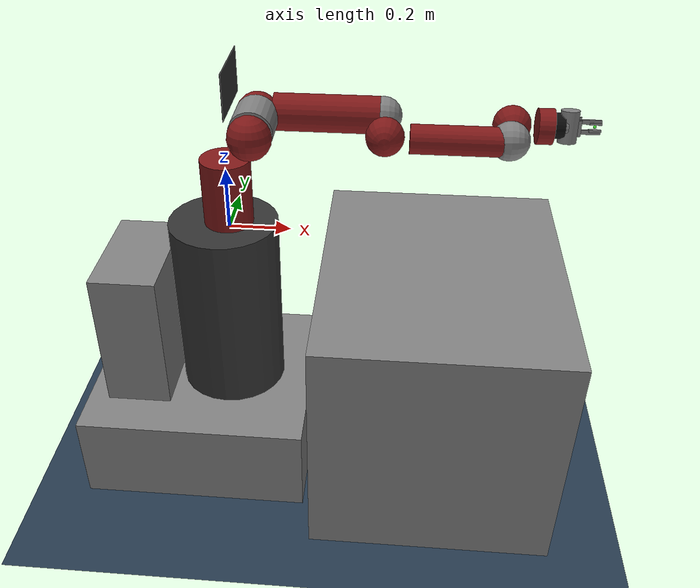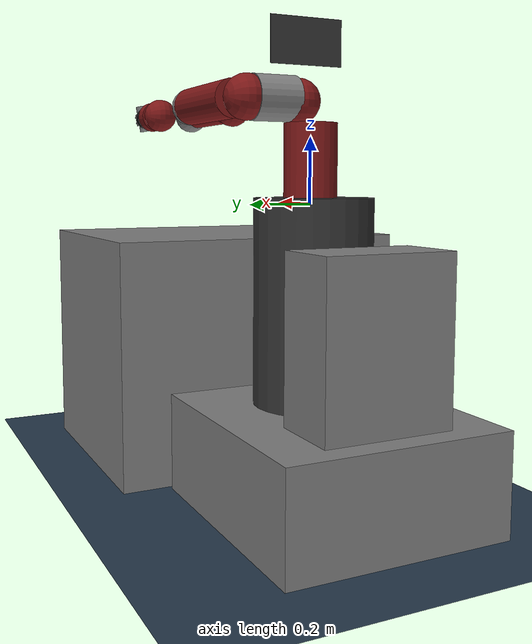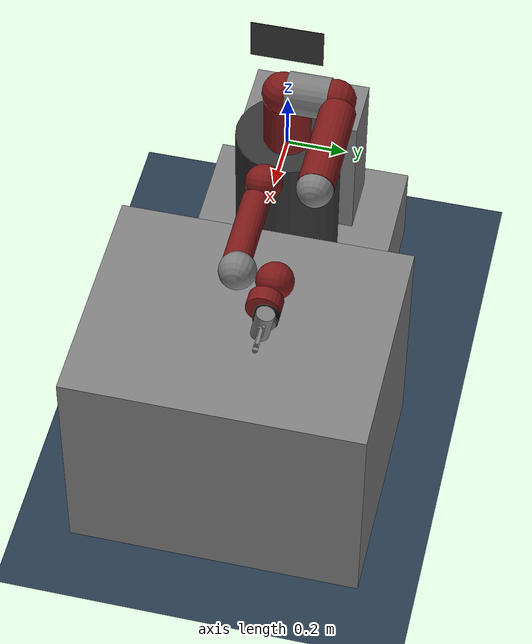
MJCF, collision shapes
<mujoco>

    <include file="shared.xml"/>

    <worldbody>

        <!-- Lights -->
        <light directional="true" ambient="0.2 0.2 0.2" diffuse="0.8 0.8 0.8" specular="0.3 0.3 0.3" castshadow="false" pos="0 0 4" dir="0 0 -1" name="light0"/>

        <!-- Floor -->
        <geom name="floor" pos="0 0 -0.92" size="20 20 0.00001" type="plane" material="mat_plane"/>

        <!-- Robot -->
        <include file="sawyer_gripper_mujoco.xml"/>

        <!-- Table -->
        <body name="table" pos="0.7 0 -0.52">
            <geom name="table" pos="0 0 0" size="0.4 0.5 0.4" type="box" mass="2000"  solimp="0.99 0.99 0.01" solref="0.01 1" group="1"/>
        </body>

        <!-- Object -->
        <body name="object">
            <joint name="object_j" type="free"/>
			<geom name="object" size="0.02 0.02 0.02" type="box" rgba="0.9 0.0 0.0 0.8" mass="0.02" solimp="0.99 0.99 0.01" solref="0.01 1" group="1"/>
			<site name="object" size="0.01" pos="0 0 0" rgba=".1 .9 0 1" type="sphere"/>
		</body>

    </worldbody>

    <actuator>
        <velocity ctrllimited="true" ctrlrange="-1.74 1.74"   joint="right_j0" kv="8.0" name="right_j0_vel"/>
        <velocity ctrllimited="true" ctrlrange="-1.328 1.328" joint="right_j1" kv="7.0" name="right_j1_vel"/>
        <velocity ctrllimited="true" ctrlrange="-1.957 1.957" joint="right_j2" kv="6.0" name="right_j2_vel"/>
        <velocity ctrllimited="true" ctrlrange="-1.957 1.957" joint="right_j3" kv="4.0" name="right_j3_vel"/>
        <velocity ctrllimited="true" ctrlrange="-3.485 3.485" joint="right_j4" kv="2.0" name="right_j4_vel"/>
        <velocity ctrllimited="true" ctrlrange="-3.485 3.485" joint="right_j5" kv="0.5" name="right_j5_vel"/>
        <velocity ctrllimited="true" ctrlrange="-4.545 4.545" joint="right_j6" kv="0.1" name="right_j6_vel"/>

        <position ctrllimited="true" ctrlrange="0 0.020833"   joint="right_gripper_l_finger_joint" kp="10000" forcelimited="false" forcerange="-20 20"/>
        <position ctrllimited="true" ctrlrange="-0.020833 0"  joint="right_gripper_r_finger_joint" kp="10000" forcelimited="false" forcerange="-20 20"/>

    </actuator>

</mujoco>

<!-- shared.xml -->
<mujoco>

    <compiler angle="radian" meshdir="meshes/"/>
    <size njmax="500" nconmax="100"/>

    <option gravity="0 0 -9.81" timestep="0.002" cone="elliptic" impratio="20" />

    <asset>
        <mesh name="pedestal" file="pedestal.STL" />
        <mesh name="base" file="base.STL" />
        <mesh name="l0" file="l0.STL" />
        <mesh name="head" file="head.STL" />
        <mesh name="l1" file="l1.STL" />
        <mesh name="l2" file="l2.STL" />
        <mesh name="l3" file="l3.STL" />
        <mesh name="l4" file="l4.STL" />
        <mesh name="l5" file="l5.STL" />
        <mesh name="l6" file="l6.STL" />
        <mesh name="connector_plate" file="connector_plate.STL" />
        <mesh name="electric_gripper_base" file="electric_gripper_base.STL" />
        <mesh name="standard_narrow" file="standard_narrow.STL" />
        <mesh name="basic_soft_tip" file="basic_soft_tip.STL" />

        <texture name="tex_plane" type="2d" builtin="checker" rgb1=".2 .3 .4" rgb2=".1 0.15 0.2" width="512" height="512"/>
        <material name="mat_plane" reflectance="0.3" texture="tex_plane" texrepeat="1 1" texuniform="true"/>

    </asset>

    <contact>
        <exclude body1="right_gripper_l_finger" body2="right_gripper_r_finger"/>
    </contact>

</mujoco>

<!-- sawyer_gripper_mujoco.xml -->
<mujoco model="sawyer">
        <body name="base" pos="0 0 0">
            <inertial pos="0 0 0" mass="0" diaginertia="0 0 0" />
            <body name="controller_box" pos="0 0 0">
                <inertial pos="-0.325 0 -0.38" mass="46.64" diaginertia="1.71363 1.27988 0.809981" />
                <geom size="0.11 0.2 0.265" pos="-0.325 0 -0.38" type="box" />
            </body>
            <body name="pedestal_feet" pos="0 0 0">
                <inertial pos="-0.1225 0 -0.758" mass="167.09" diaginertia="8.16095 9.59375 15.0785" />
                <geom size="0.385 0.35 0.155" pos="-0.1225 0 -0.758" type="box" />
            </body>
            <body name="pedestal" pos="0 0 0">
                <inertial pos="0 0 -0.5" quat="0.659267 -0.259505 -0.260945 0.655692" mass="60.864" diaginertia="6.0869 5.81635 4.20915" />
                <geom pos="0.26 0.345 -0.91488" quat="0.5 0.5 -0.5 -0.5" type="mesh" contype="0" conaffinity="0" group="1" rgba="0.2 0.2 0.2 1" mesh="pedestal" />
                <geom size="0.18 0.31" pos="-0.02 0 -0.29" type="cylinder" rgba="0.2 0.2 0.2 1" />
            </body>
            <body name="right_arm_base_link" pos="0 0 0">
                <inertial pos="-0.0006241 -2.8025e-05 0.065404" quat="-0.209285 0.674441 0.227335 0.670558" mass="2.0687" diaginertia="0.00740351 0.00681776 0.00672942" />
                <geom type="mesh" contype="0" conaffinity="0" group="1" rgba="0.5 0.1 0.1 1" mesh="base" />
                <geom size="0.08 0.12" pos="0 0 0.12" type="cylinder" rgba="0.5 0.1 0.1 1" />
                <body name="right_l0" pos="0 0 0.08">
                    <inertial pos="0.024366 0.010969 0.14363" quat="0.894823 0.00899958 -0.170275 0.412573" mass="5.3213" diaginertia="0.0651588 0.0510944 0.0186218" />
                    <joint name="right_j0" pos="0 0 0" axis="0 0 1" limited="true" range="-3.0503 3.0503" />
                    <geom type="mesh" contype="0" conaffinity="0" group="1" rgba="0.5 0.1 0.1 1" mesh="l0" />
                    <geom size="0.07" pos="0.08 0 0.23" rgba="0.5 0.1 0.1 1" />
                    <body name="head" pos="0 0 0.2965">
                        <inertial pos="0.0053207 -2.6549e-05 0.1021" quat="0.999993 7.08405e-05 -0.00359857 -0.000626247" mass="1.5795" diaginertia="0.0118334 0.00827089 0.00496574" />
                        <geom type="mesh" contype="0" conaffinity="0" group="1" rgba="0.5 0.1 0.1 1" mesh="head" />
                        <body name="screen" pos="0.03 0 0.105" quat="0.5 0.5 0.5 0.5">
                            <inertial pos="0 0 0" mass="0.0001" diaginertia="1e-08 1e-08 1e-08" />
                            <geom size="0.12 0.07 0.001" type="box" contype="0" conaffinity="0" group="1" rgba="0.2 0.2 0.2 1" />
                            <geom size="0.001" rgba="0.2 0.2 0.2 1" />
                        </body>
                        <body name="head_camera" pos="0.0228027 0 0.216572" quat="0.342813 -0.618449 0.618449 -0.342813">
                            <inertial pos="0.0228027 0 0.216572" quat="0.342813 -0.618449 0.618449 -0.342813" mass="0" diaginertia="0 0 0" />
                        </body>
                    </body>
                    <body name="right_torso_itb" pos="-0.055 0 0.22" quat="0.707107 0 -0.707107 0">
                        <inertial pos="0 0 0" mass="0.0001" diaginertia="1e-08 1e-08 1e-08" />
                    </body>
                    <body name="right_l1" pos="0.081 0.05 0.237" quat="0.5 -0.5 0.5 0.5">
                        <inertial pos="-0.0030849 -0.026811 0.092521" quat="0.424888 0.891987 0.132364 -0.0794296" mass="4.505" diaginertia="0.0224339 0.0221624 0.0097097" />
                        <joint name="right_j1" pos="0 0 0" axis="0 0 1" limited="true" range="-3.8095 2.2736" />
                        <geom type="mesh" contype="0" conaffinity="0" group="1" rgba="0.5 0.1 0.1 1" mesh="l1" />
                        <geom size="0.07" pos="0 0 0.1225" rgba="0.5 0.1 0.1 1" />
                        <body name="right_l2" pos="0 -0.14 0.1425" quat="0.707107 0.707107 0 0">
                            <inertial pos="-0.00016044 -0.014967 0.13582" quat="0.707831 -0.0524761 0.0516007 0.702537" mass="1.745" diaginertia="0.0257928 0.025506 0.00292515" />
                            <joint name="right_j2" pos="0 0 0" axis="0 0 1" limited="true" range="-3.0426 3.0426" />
                            <geom type="mesh" contype="0" conaffinity="0" group="1" rgba="0.5 0.1 0.1 1" mesh="l2" />
                            <geom size="0.06 0.17" pos="0 0 0.08" type="cylinder" rgba="0.5 0.1 0.1 1" />
                            <body name="right_l3" pos="0 -0.042 0.26" quat="0.707107 -0.707107 0 0">
                                <inertial pos="-0.0048135 -0.0281 -0.084154" quat="0.902999 0.385391 -0.0880901 0.168247" mass="2.5097" diaginertia="0.0102404 0.0096997 0.00369622" />
                                <joint name="right_j3" pos="0 0 0" axis="0 0 1" limited="true" range="-3.0439 3.0439" />
                                <geom type="mesh" contype="0" conaffinity="0" group="1" rgba="0.5 0.1 0.1 1" mesh="l3" />
                                <geom size="0.06" pos="0 -0.01 -0.12" rgba="0.5 0.1 0.1 1" />
                                <body name="right_l4" pos="0 -0.125 -0.1265" quat="0.707107 0.707107 0 0">
                                    <inertial pos="-0.0018844 0.0069001 0.1341" quat="0.803612 0.031257 -0.0298334 0.593582" mass="1.1136" diaginertia="0.0136549 0.0135493 0.00127353" />
                                    <joint name="right_j4" pos="0 0 0" axis="0 0 1" limited="true" range="-2.9761 2.9761" />
                                    <geom type="mesh" contype="0" conaffinity="0" group="1" rgba="0.5 0.1 0.1 1" mesh="l4" />
                                    <geom size="0.045 0.15" pos="0 0 0.11" type="cylinder" rgba="0.5 0.1 0.1 1" />
                                    <body name="right_arm_itb" pos="-0.055 0 0.075" quat="0.707107 0 -0.707107 0">
                                        <inertial pos="0 0 0" mass="0.0001" diaginertia="1e-08 1e-08 1e-08" />
                                    </body>
                                    <body name="right_l5" pos="0 0.031 0.275" quat="0.707107 -0.707107 0 0">
                                        <inertial pos="0.0061133 -0.023697 0.076416" quat="0.404076 0.9135 0.0473125 0.00158335" mass="1.5625" diaginertia="0.00474131 0.00422857 0.00190672" />
                                        <joint name="right_j5" pos="0 0 0" axis="0 0 1" limited="true" range="-2.9761 2.9761" />
                                        <geom type="mesh" contype="0" conaffinity="0" group="1" rgba="0.5 0.1 0.1 1" mesh="l5" />
                                        <geom size="0.06" pos="0 0 0.1" rgba="0.5 0.1 0.1 1" />
                                        <body name="right_hand_camera" pos="0.039552 -0.033 0.0695" quat="0.707107 0 0.707107 0">
                                            <inertial pos="0.039552 -0.033 0.0695" quat="0.707107 0 0.707107 0" mass="0" diaginertia="0 0 0" />
                                        </body>
                                        <body name="right_wrist" pos="0 0 0.10541" quat="0.707107 0.707107 0 0">
                                            <inertial pos="0 0 0.10541" quat="0.707107 0.707107 0 0" mass="0" diaginertia="0 0 0" />
                                        </body>
                                        <body name="right_l6" pos="0 -0.11 0.1053" quat="0.0616248 0.06163 -0.704416 0.704416">
                                            <inertial pos="-8.0726e-06 0.0085838 -0.0049566" quat="0.479044 0.515636 -0.513069 0.491322" mass="0.3292" diaginertia="0.000360258 0.000311068 0.000214974" />
                                            <joint name="right_j6" pos="0 0 0" axis="0 0 1" limited="true" range="-4.7124 4.7124" />
                                            <geom type="mesh" contype="0" conaffinity="0" group="1" rgba="0.5 0.1 0.1 1" mesh="l6" />
                                            <geom size="0.055 0.025" pos="0 0.015 -0.01" type="cylinder" rgba="0.5 0.1 0.1 1" />
                                            <body name="right_hand" pos="0 0 0.0245" quat="0.707107 0 0 0.707107">
                                                <inertial pos="1e-08 1e-08 1e-08" quat="0.820473 0.339851 -0.17592 0.424708" mass="1e-08" diaginertia="1e-08 1e-08 1e-08" />
                                                <geom size="0.035 0.015" pos="0 0 0.02" type="cylinder" />
                                                <body name="right_gripper_base" pos="0 0 -0.005">
                                                    <inertial pos="0.0028 -0.0004 0.0343" mass="0.47" diaginertia="1e-08 1e-08 1e-08" />
                                                    <body name="right_connector_plate_base" pos="0 0 0.0018">
                                                        <inertial pos="0 0 0" quat="0.483054 0.500901 -0.498692 0.516781" mass="0" diaginertia="0.000123974 6.98704e-05 6.81858e-05" />
                                                        <geom type="mesh" contype="0" conaffinity="0" group="1" rgba="0.05 0.05 0.05 1" mesh="connector_plate" />
                                                        <geom size="0.04 0.0151" pos="0 0 0.0135" type="cylinder" rgba="0.05 0.05 0.05 1" />
                                                        <body name="right_connector_plate_mount" pos="0 0 0.0176">
                                                            <inertial pos="0 0 0.0176" mass="0" diaginertia="0 0 0" />
                                                            <body name="right_electric_gripper_base" pos="0 0 0">

                                                                <camera name="camera_on_hand" mode="fixed" pos="0.05 0 0" zaxis="0 0 -1"/>

                                                                <inertial pos="0 0 0" quat="0 0 0.707107 0.707107" mass="2e-06" diaginertia="1.1e-09 1.1e-09 1.1e-09" />
                                                                <geom type="mesh" contype="0" conaffinity="0" group="1" mesh="electric_gripper_base" />
                                                                <geom size="0.029 0.05" pos="0.004 0 0.025" quat="0 0 0.707107 0.707107" type="cylinder" />
                                                                <body name="right_gripper_l_finger" pos="0.003 -0.0015 0.04552">
                                                                    <inertial pos="0 0 0" quat="0 0 0 -1" mass="0.001" diaginertia="0.01 0.01 0.01" />
                                                                    <joint name="right_gripper_l_finger_joint" pos="0 0 0" axis="0 1 0" type="slide" limited="true" range="0 0.020833" damping="100"/>
                                                                    <geom quat="0 0 0 -1" type="mesh" contype="0" conaffinity="0" group="1" mesh="standard_narrow" />
                                                                    <geom size="0.005 0.00675 0.0375" pos="0 0.01725 0.04" quat="0 0 0 -1" type="box" />
                                                                    <geom size="0.005 0.025 0.0085" pos="-0.005 -0.003 0.0083" quat="0 0 0 -1" type="box" />
                                                                    <body name="right_gripper_l_finger_tip" pos="0 0.01725 0.075">
                                                                        <inertial pos="0 0 0" quat="0 0 0 1" mass="0.001" diaginertia="0.01 0.01 0.01" />
                                                                        <geom quat="0 0 0 1" type="mesh" contype="0" conaffinity="0" group="1" mesh="basic_soft_tip" />
                                                                        <geom size="0.008 0.0035 0.0185" pos="0 -0.0045 -0.015" quat="0 0 0 1" type="box" name="l_finger_tip"  friction="1 0.05 0.01"/>
                                                                    </body>
                                                                </body>
                                                                <body name="right_gripper_r_finger" pos="0.003 0.0015 0.04552">
                                                                    <inertial pos="0 0 0" mass="0.001" diaginertia="0.01 0.01 0.01" />
                                                                    <joint name="right_gripper_r_finger_joint" pos="0 0 0" axis="0 1 0" type="slide" limited="true" range="-0.020833 0" damping="100"/>
                                                                    <geom type="mesh" contype="0" conaffinity="0" group="1" mesh="standard_narrow" />
                                                                    <geom size="0.005 0.00675 0.0375" pos="0 -0.01725 0.04" type="box" />
                                                                    <geom size="0.005 0.025 0.0085" pos="0.005 0.003 0.0083" type="box" />
                                                                    <body name="right_gripper_r_finger_tip" pos="0 -0.01725 0.075">
                                                                        <inertial pos="0 0 0" mass="0.001" diaginertia="0.01 0.01 0.01" />
                                                                        <geom type="mesh" contype="0" conaffinity="0" group="1" mesh="basic_soft_tip" />
                                                                        <geom size="0.008 0.0035 0.0185" pos="0 0.0045 -0.015" type="box" name="r_finger_tip"  friction="1 0.05 0.01"/>
                                                                    </body>
                                                                </body>
                                                            </body>
                                                        </body>
                                                    </body>
                                                    <body name="right_gripper_tip" pos="0 0 0.125">
                                                        <inertial pos="0 0 0" mass="2e-06" diaginertia="1.1e-09 1.1e-09 1.1e-09" />
                                                        <site name="right_gripper_tip" pos="0 0 0" size="0.005" rgba=".1 .9 0 .8" type="sphere"/>
                                                    </body>
                                                </body>
                                            </body>
                                        </body>
                                    </body>
                                    <body name="right_l4_2" pos="0 0 0">
                                        <inertial pos="1e-08 1e-08 1e-08" quat="0.820473 0.339851 -0.17592 0.424708" mass="1e-08" diaginertia="1e-08 1e-08 1e-08" />
                                        <geom size="0.06" pos="0 0.01 0.26" />
                                    </body>
                                </body>
                            </body>
                            <body name="right_l2_2" pos="0 0 0">
                                <inertial pos="1e-08 1e-08 1e-08" quat="0.820473 0.339851 -0.17592 0.424708" mass="1e-08" diaginertia="1e-08 1e-08 1e-08" />
                                <geom size="0.06" pos="0 0 0.26" />
                            </body>
                        </body>
                        <body name="right_l1_2" pos="0 0 0">
                            <inertial pos="1e-08 1e-08 1e-08" quat="0.820473 0.339851 -0.17592 0.424708" mass="1e-08" diaginertia="1e-08 1e-08 1e-08" />
                            <geom size="0.07 0.07" pos="0 0 0.035" type="cylinder" />
                        </body>
                    </body>
                </body>
            </body>
            <body name="torso" pos="0 0 0">
                <inertial pos="0 0 0" mass="0.0001" diaginertia="1e-08 1e-08 1e-08" />
                <geom size="0.0005 0.0005 0.0005" type="box" contype="0" conaffinity="0" group="1" rgba="0.2 0.2 0.2 1" />
            </body>
        </body>
</mujoco>
